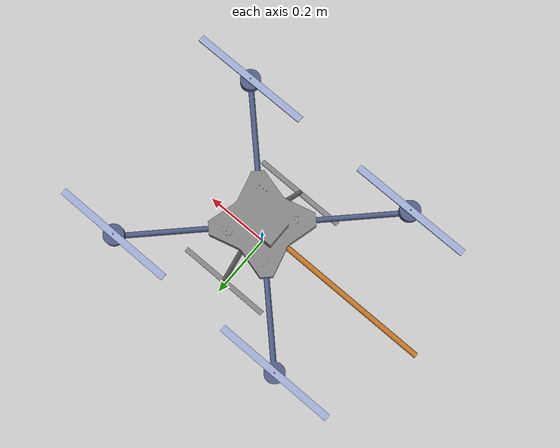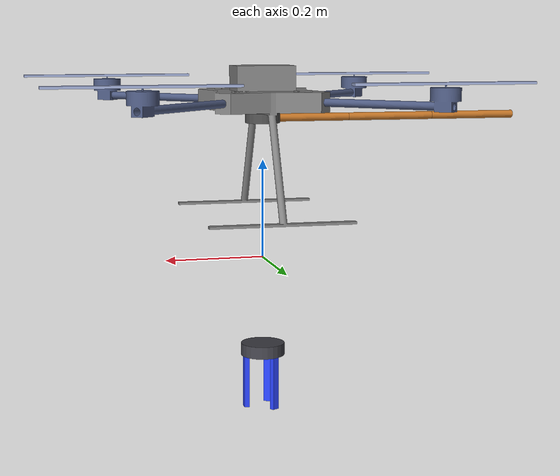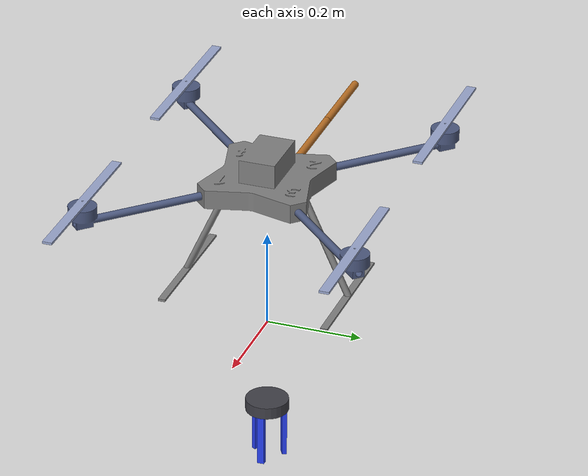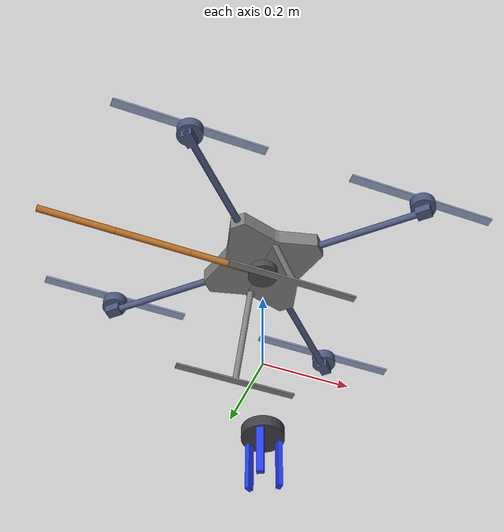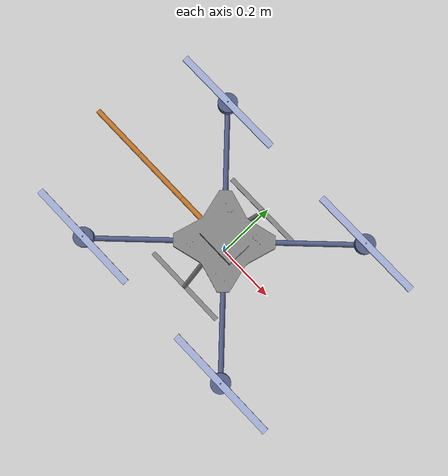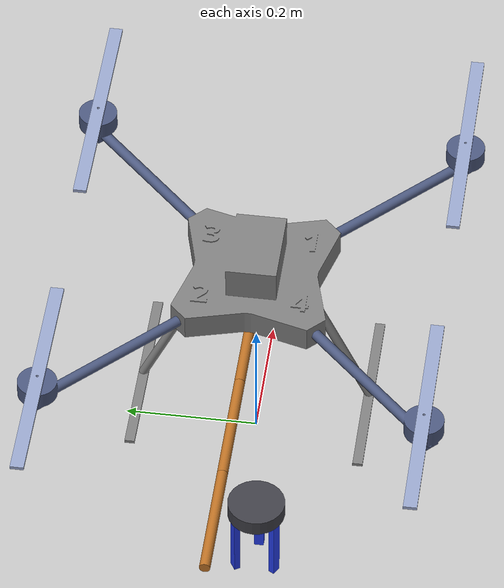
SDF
<?xml version="1.0" encoding="UTF-8"?>
<sdf version='1.9'>
  <model name='hillstar_rigid_arm_gripper'>
    <include merge='true'>
      <uri>model://hillstar</uri>
    </include>
    <include merge='true'>
      <uri>model://rigid_arm_3link</uri>
    </include>

    <joint name="rigid_arm_joint_1" type="revolute">
      <parent>base_link</parent>
      <child>rigid_arm_3link/link_1</child>
      <axis>
        <xyz>0 -1 0</xyz>
        <limit>
          <lower>-2.0944</lower>
          <upper>2.0944</upper>
          <effort>0.6</effort>
          <velocity>3.0</velocity>
        </limit>
        <dynamics>
          <damping>0.05</damping>
          <friction>0.01</friction>
        </dynamics>
      </axis>
    </joint>

    <include merge='true'>
      <uri>model://gripper_3finger</uri>
      <pose relative_to='rigid_arm_3link/link_3'>0 0 -0.18 0 0 0</pose>
    </include>

    <!-- Glue joint: welds the palm base onto the arm's tip link, same as
         each finger below. Fixed - it's a static connector between the arm
         and the finger set, not an actuated part. -->
    <joint name="palm_joint" type="fixed">
      <parent>rigid_arm_3link/link_3</parent>
      <child>gripper_3finger/palm</child>
    </joint>

    <!-- Finger glue joints: mount each finger onto the arm's tip link
         instead of base_link (the only difference from hillstar_gripper's
         equivalent joints). Axis/limit/dynamics unchanged. -->
    <joint name="finger_0_joint" type="revolute">
      <parent>rigid_arm_3link/link_3</parent>
      <child>gripper_3finger/finger_0</child>
      <axis>
        <xyz>0 -1 0</xyz>
        <limit>
          <lower>-0.6</lower>
          <upper>0.6</upper>
          <effort>0.5</effort>
          <velocity>3.0</velocity>
        </limit>
        <dynamics>
          <damping>0.02</damping>
          <friction>0.005</friction>
        </dynamics>
      </axis>
    </joint>

    <joint name="finger_1_joint" type="revolute">
      <parent>rigid_arm_3link/link_3</parent>
      <child>gripper_3finger/finger_1</child>
      <axis>
        <xyz>0 -1 0</xyz>
        <limit>
          <lower>-0.6</lower>
          <upper>0.6</upper>
          <effort>0.5</effort>
          <velocity>3.0</velocity>
        </limit>
        <dynamics>
          <damping>0.02</damping>
          <friction>0.005</friction>
        </dynamics>
      </axis>
    </joint>

    <joint name="finger_2_joint" type="revolute">
      <parent>rigid_arm_3link/link_3</parent>
      <child>gripper_3finger/finger_2</child>
      <axis>
        <xyz>0 -1 0</xyz>
        <limit>
          <lower>-0.6</lower>
          <upper>0.6</upper>
          <effort>0.5</effort>
          <velocity>3.0</velocity>
        </limit>
        <dynamics>
          <damping>0.02</damping>
          <friction>0.005</friction>
        </dynamics>
      </axis>
    </joint>

    <plugin filename="GripperController" name="gripper_controller::GripperController">
      <gripper_base_link>rigid_arm_3link/link_3</gripper_base_link>
      <finger_joint>finger_0_joint</finger_joint>
      <finger_joint>finger_1_joint</finger_joint>
      <finger_joint>finger_2_joint</finger_joint>
      <finger_collision>gripper_3finger/finger_0_collision</finger_collision>
      <finger_collision>gripper_3finger/finger_1_collision</finger_collision>
      <finger_collision>gripper_3finger/finger_2_collision</finger_collision>
      <finger_contact_topic>/gripper_3finger/finger_0_contact</finger_contact_topic>
      <finger_contact_topic>/gripper_3finger/finger_1_contact</finger_contact_topic>
      <finger_contact_topic>/gripper_3finger/finger_2_contact</finger_contact_topic>
      <!-- open = fingers spread outward, ready to grab; closed = fingers
           curled toward center, object grasped; 30 deg from vertical. -->
      <open_position>0.5235</open_position>
      <closed_position>-0.5235</closed_position>
      <finger_p_gain>1.5</finger_p_gain>
      <finger_d_gain>0.02</finger_d_gain>
      <finger_effort_limit>0.5</finger_effort_limit>
      <command_topic>/hillstar/gripper_cmd</command_topic>
      <state_topic>/hillstar/gripper_state</state_topic>
      <grasp_radius>0.08</grasp_radius>
      <grasp_center_offset>0 0 -0.252</grasp_center_offset>
      <vehicle_model_name>hillstar_rigid_arm_gripper</vehicle_model_name>
    </plugin>
  </model>
</sdf>

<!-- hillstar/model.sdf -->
<sdf version='1.9'>
  <model name='hillstar'>
    <pose>0 0 0.30 0 0 0</pose>
    <self_collide>false</self_collide>
    <static>false</static>
    <link name='base_link'>
      <pose>0 0 0 0 0 0</pose>
      <gravity>true</gravity>
      <velocity_decay/>
      <inertial>
        <mass>3.26</mass>
        <inertia>
          <ixx>0.0205</ixx>
          <iyy>0.0177</iyy>
          <izz>0.0225</izz>
          <ixy>0</ixy>
          <ixz>0</ixz>
          <iyz>0</iyz>
        </inertia>
      </inertial>
      <collision name="collision_base_link">
        <pose>0 0 0.0425 0 0 0</pose>
        <geometry>
          <box>
            <size>0.20 0.20 0.095</size>
          </box>
        </geometry>
      </collision>
      <collision name="collision_leg_left">
        <pose>0 -0.1715 -0.2075 0 0 0</pose>
        <geometry>
          <box>
            <size>0.29 0.015 0.005</size>
          </box>
        </geometry>
      </collision>
      <collision name="collision_leg_right">
        <pose>0 0.1715 -0.2075 0 0 0</pose>
        <geometry>
          <box>
            <size>0.29 0.015 0.005</size>
          </box>
        </geometry>
      </collision>
      <visual name='visual_base_link'>
        <pose>0 0 0 0 0 0</pose>
        <geometry>
          <mesh>
          <uri>model://hillstar/stl_files/body_frame_subassembly.stl</uri>
          </mesh>
        </geometry>
        <material>
          <ambient>0.2 0.2 0.2 1</ambient>
          <diffuse>0.5 0.5 0.5 1</diffuse>
          <specular>0.25 0.25 0.25 1</specular>
        </material>
      </visual>
      <collision name="collision_gripper_mount">
        <pose>0 0 -0.015 0 0 0</pose>
        <geometry>
          <cylinder><radius>0.035</radius><length>0.02</length></cylinder>
        </geometry>
      </collision>
      <visual name="visual_gripper_mount">
        <pose>0 0 -0.015 0 0 0</pose>
        <geometry>
          <cylinder><radius>0.035</radius><length>0.02</length></cylinder>
        </geometry>
        <material>
          <ambient>0.2 0.2 0.2 1</ambient>
          <diffuse>0.3 0.3 0.3 1</diffuse>
        </material>
      </visual>

      <!-- the sensors attached on the main body should go here -->
      <sensor name="air_pressure_sensor" type="air_pressure">
        <always_on>1</always_on>
        <update_rate>50</update_rate>
        <air_pressure>
          <pressure>
            <noise type="gaussian">
              <mean>0</mean>
              <stddev>0.01</stddev>
            </noise>
          </pressure>
        </air_pressure>
      </sensor>
      <sensor name="imu_sensor" type="imu">
        <always_on>1</always_on>
        <update_rate>250</update_rate>
        <imu>
          <angular_velocity>
            <x>
              <noise type="gaussian">
                <mean>0</mean>
                <stddev>0.00018665</stddev>
                <dynamic_bias_stddev>3.8785e-05</dynamic_bias_stddev>
                <dynamic_bias_correlation_time>1000</dynamic_bias_correlation_time>
              </noise>
            </x>
            <y>
              <noise type="gaussian">
                <mean>0</mean>
                <stddev>0.00018665</stddev>
                <dynamic_bias_stddev>3.8785e-05</dynamic_bias_stddev>
                <dynamic_bias_correlation_time>1000</dynamic_bias_correlation_time>
              </noise>
            </y>
            <z>
              <noise type="gaussian">
                <mean>0</mean>
                <stddev>0.00018665</stddev>
                <dynamic_bias_stddev>3.8785e-05</dynamic_bias_stddev>
                <dynamic_bias_correlation_time>1000</dynamic_bias_correlation_time>
              </noise>
            </z>
          </angular_velocity>
          <linear_acceleration>
            <x>
              <noise type="gaussian">
                <mean>0</mean>
                <stddev>0.00186</stddev>
                <dynamic_bias_stddev>0.006</dynamic_bias_stddev>
                <dynamic_bias_correlation_time>300</dynamic_bias_correlation_time>
              </noise>
            </x>
            <y>
              <noise type="gaussian">
                <mean>0</mean>
                <stddev>0.00186</stddev>
                <dynamic_bias_stddev>0.006</dynamic_bias_stddev>
                <dynamic_bias_correlation_time>300</dynamic_bias_correlation_time>
              </noise>
            </y>
            <z>
              <noise type="gaussian">
                <mean>0</mean>
                <stddev>0.00186</stddev>
                <dynamic_bias_stddev>0.006</dynamic_bias_stddev>
                <dynamic_bias_correlation_time>300</dynamic_bias_correlation_time>
              </noise>
            </z>
          </linear_acceleration>
        </imu>
      </sensor>
      <sensor name="navsat_sensor" type="navsat">
        <always_on>1</always_on>
        <update_rate>30</update_rate>
      </sensor>

      <!-- Forward/down-looking RGB camera for future AprilTag-based -->
      <!-- perception. Rigidly mounted under the front of the body (no -->
      <!-- separate link/joint needed - it never moves relative to base_link), -->
      <!-- pitched 30 deg down from horizontal so it naturally frames the -->
      <!-- sloped wall ahead during a level approach. horizontal_fov=110deg -->
      <!-- with a 4:3 image -->
      <sensor name="camera_sensor" type="camera">
        <pose>0.1 0 -0.03 0 0.5236 0</pose>
        <always_on>1</always_on>
        <update_rate>20</update_rate>
        <topic>hillstar/camera</topic>
        <camera>
          <horizontal_fov>1.91986</horizontal_fov>
          <image>
            <width>1280</width>
            <height>960</height>
            <format>R8G8B8</format>
          </image>
          <clip>
            <near>0.05</near>
            <far>50</far>
          </clip>
        </camera>
      </sensor>
    </link>

    <!-- ARM - 0 -->
    <!-- The link for individual arm assembly -->
    <link name = "arm_0">
      <gravity>true</gravity>
      <self_collide>false</self_collide>
      <velocity_decay/>
      <pose>0.102 -0.102 0.02 0 0 0.785</pose>
      <inertial>
        <mass>0.2</mass>
          <inertia>
            <ixx>9.1e-4</ixx>
            <iyy>7.1e-5</iyy>
            <izz>9.1e-4</izz>
          </inertia>
      </inertial>
      <visual name='visual_arm_assembly_0'>
        <pose>0 0 0 0 0 0</pose>
        <geometry>
          <mesh>
            <uri>model://hillstar/stl_files/arm.stl</uri>
          </mesh>
        </geometry>
        <material>
          <ambient>0.25 0.3 0.4 1.0</ambient>
          <diffuse>0.3 0.35 0.5 1.0</diffuse>
          <specular>0.3 0.3 0.3 1.0</specular>
          <emissive>0.0 0.0 0.0 0.0</emissive>
        </material>
      </visual>
      <collision name='collision_arm_assembly_0'>
        <pose>0 -0.135 0 0 0 0</pose>
        <!-- origin is at the mounting point, shifting it to Center of Geometry -->
        <geometry>
          <box>
            <size>0.06 0.27 0.045</size>
          </box>
        </geometry>
      </collision>
    </link>

    <!-- The joint for tilting arm_0 -->
    <joint name="tilt_arm_0" type="revolute">
      <parent>base_link</parent>
      <child>arm_0</child>
      <axis>
        <xyz>0 -1 0</xyz>
        <limit>
          <lower>-1.5707</lower>
          <upper>1.5707</upper>
          <effort>3.5</effort>
          <velocity>6.0</velocity>
        </limit>
        <dynamics>
          <damping>0.2</damping>
          <friction>0.025</friction>
        </dynamics>
      </axis>
    </joint>

    <!-- Joint Control for the tilting motor-0 -->
    <plugin filename="gz-sim-joint-position-controller-system" name="gz::sim::systems::JointPositionController">
      <joint_name>tilt_arm_0</joint_name>
      <initial_position>0</initial_position>
      <sub_topic>servo_0</sub_topic>
      <p_gain>8.0</p_gain>
      <i_gain>0.1</i_gain>
      <d_gain>0.3</d_gain>
    </plugin>

    <!-- Link for the propeller-0 -->
    <link name = "prop_0">
      <gravity>true</gravity>
      <self_collide>false</self_collide>
      <velocity_decay/>
      <pose>0.28 -0.28 0.06 0 0 0</pose>
      <inertial>
        <mass>0.025</mass>
          <inertia>
            <ixx>8.8e-07</ixx>
            <iyy>2.6e-04</iyy>
            <izz>2.6e-04</izz>
          </inertia>
      </inertial>
      <visual name='visual_prop_0'>
        <geometry>
          <mesh>
            <uri>model://hillstar/stl_files/prop.stl</uri>
          </mesh>
        </geometry>
        <material>
          <ambient>0.3 0.32 0.36 1</ambient>
          <diffuse>0.6 0.65 0.8 1</diffuse>
          <specular>0.4 0.45 0.55 1</specular>
        </material>
      </visual>
      <collision name='collision_prop_0'>
        <geometry>
          <mesh>
            <uri>model://hillstar/stl_files/prop.stl</uri>
          </mesh>
        </geometry>
      </collision>
    </link>

    <!-- Joint for the propeller-0 -->
    <joint name="rotor_0_joint" type="revolute">
      <parent>arm_0</parent>
      <child>prop_0</child>
      <axis>
        <xyz>0 0 1</xyz>
        <dynamics>
          <spring_reference>0</spring_reference>
          <spring_stiffness>0</spring_stiffness>
        </dynamics>
      </axis>
    </joint>

    <!-- Motor object for the propeller-0 -->
    <plugin filename="gz-sim-multicopter-motor-model-system" name="gz::sim::systems::MulticopterMotorModel">
      <jointName>rotor_0_joint</jointName>
      <linkName>prop_0</linkName>
      <turningDirection>ccw</turningDirection>
      <timeConstantUp>0.015</timeConstantUp>
      <timeConstantDown>0.03</timeConstantDown>
      <maxRotVelocity>855</maxRotVelocity>
      <motorConstant>3.5e-5</motorConstant>
      <momentConstant>0.017</momentConstant>
      <commandSubTopic>command/motor_speed</commandSubTopic>
      <motorNumber>0</motorNumber>
      <rotorDragCoefficient>8.06428e-05</rotorDragCoefficient>
      <rollingMomentCoefficient>1e-06</rollingMomentCoefficient>
      <rotorVelocitySlowdownSim>10</rotorVelocitySlowdownSim>
      <motorType>velocity</motorType>
    </plugin>

    <!-- ARM - 1 -->
    <!-- The link for individual arm assembly -->
    <link name = "arm_1">
      <gravity>true</gravity>
      <self_collide>false</self_collide>
      <velocity_decay/>
      <pose>-0.102 0.102 0.02 0 0 -2.356</pose>
      <inertial>
        <mass>0.2</mass>
          <inertia>
            <ixx>9.1e-4</ixx>
            <iyy>7.1e-5</iyy>
            <izz>9.1e-4</izz>
          </inertia>
      </inertial>
      <visual name='visual_arm_assembly_1'>
        <pose>0 0 0 0 0 0</pose>
        <geometry>
          <mesh>
            <uri>model://hillstar/stl_files/arm.stl</uri>
          </mesh>
        </geometry>
        <material>
          <ambient>0.25 0.3 0.4 1.0</ambient>
          <diffuse>0.3 0.35 0.5 1.0</diffuse>
          <specular>0.3 0.3 0.3 1.0</specular>
          <emissive>0.0 0.0 0.0 0.0</emissive>
        </material>
      </visual>
      <collision name='collision_arm_assembly_1'>
        <pose>0 -0.135 0 0 0 0</pose>
        <!-- origin is at the mounting point, shifting it to Center of Geometry -->
        <geometry>
          <box>
            <size>0.06 0.27 0.045</size>
          </box>
        </geometry>
      </collision>
    </link>

    <!-- The joint for tilting arm_1 -->
    <joint name="tilt_arm_1" type="revolute">
      <parent>base_link</parent>
      <child>arm_1</child>
      <axis>
        <xyz>0 -1 0</xyz>
        <limit>
          <lower>-1.5707</lower>
          <upper>1.5707</upper>
          <effort>3.5</effort>
          <velocity>6.0</velocity>
        </limit>
        <dynamics>
          <damping>0.2</damping>
          <friction>0.025</friction>
        </dynamics>
      </axis>
    </joint>

    <!-- Joint Control for the tilting motor-1 -->
    <plugin filename="gz-sim-joint-position-controller-system" name="gz::sim::systems::JointPositionController">
      <joint_name>tilt_arm_1</joint_name>
      <initial_position>0</initial_position>
      <sub_topic>servo_1</sub_topic>
      <p_gain>8.0</p_gain>
      <i_gain>0.1</i_gain>
      <d_gain>0.3</d_gain>
    </plugin>

    <!-- Link for the propeller-1 -->
    <link name = "prop_1">
      <gravity>true</gravity>
      <self_collide>false</self_collide>
      <velocity_decay/>
      <pose>-0.28 0.28 0.06 0 0 0</pose>
      <inertial>
        <mass>0.025</mass>
          <inertia>
            <ixx>8.8e-07</ixx>
            <iyy>2.6e-04</iyy>
            <izz>2.6e-04</izz>
          </inertia>
      </inertial>
      <visual name='visual_prop_1'>
        <geometry>
          <mesh>
            <uri>model://hillstar/stl_files/prop.stl</uri>
          </mesh>
        </geometry>
        <material>
          <ambient>0.3 0.32 0.36 1</ambient>
          <diffuse>0.6 0.65 0.8 1</diffuse>
          <specular>0.4 0.45 0.55 1</specular>
        </material>
      </visual>
      <collision name='collision_prop_1'>
        <geometry>
          <mesh>
            <uri>model://hillstar/stl_files/prop.stl</uri>
          </mesh>
        </geometry>
      </collision>
    </link>

    <!-- Joint for the propeller-1 -->
    <joint name="rotor_1_joint" type="revolute">
      <parent>arm_1</parent>
      <child>prop_1</child>
      <axis>
        <xyz>0 0 1</xyz>
        <dynamics>
          <spring_reference>0</spring_reference>
          <spring_stiffness>0</spring_stiffness>
        </dynamics>
      </axis>
    </joint>

    <!-- Motor object for the propeller-1 -->
    <plugin filename="gz-sim-multicopter-motor-model-system" name="gz::sim::systems::MulticopterMotorModel">
      <jointName>rotor_1_joint</jointName>
      <linkName>prop_1</linkName>
      <turningDirection>ccw</turningDirection>
      <timeConstantUp>0.015</timeConstantUp>
      <timeConstantDown>0.03</timeConstantDown>
      <maxRotVelocity>855</maxRotVelocity>
      <motorConstant>3.5e-5</motorConstant>
      <momentConstant>0.017</momentConstant>
      <commandSubTopic>command/motor_speed</commandSubTopic>
      <motorNumber>1</motorNumber>
      <rotorDragCoefficient>8.06428e-05</rotorDragCoefficient>
      <rollingMomentCoefficient>1e-06</rollingMomentCoefficient>
      <rotorVelocitySlowdownSim>10</rotorVelocitySlowdownSim>
      <motorType>velocity</motorType>
    </plugin>

    <!-- ARM - 2 -->
    <!-- The link for individual arm assembly -->
    <link name = "arm_2">
      <gravity>true</gravity>
      <self_collide>false</self_collide>
      <velocity_decay/>
      <pose>0.102 0.102 0.02 0 0 2.356</pose>
      <inertial>
        <mass>0.2</mass>
          <inertia>
            <ixx>9.1e-4</ixx>
            <iyy>7.1e-5</iyy>
            <izz>9.1e-4</izz>
          </inertia>
      </inertial>
      <visual name='visual_arm_assembly_2'>
        <pose>0 0 0 0 0 0</pose>
        <geometry>
          <mesh>
            <uri>model://hillstar/stl_files/arm.stl</uri>
          </mesh>
        </geometry>
        <material>
          <ambient>0.25 0.3 0.4 1.0</ambient>
          <diffuse>0.3 0.35 0.5 1.0</diffuse>
          <specular>0.3 0.3 0.3 1.0</specular>
          <emissive>0.0 0.0 0.0 0.0</emissive>
        </material>
      </visual>
      <collision name='collision_arm_assembly_2'>
        <pose>0 -0.135 0 0 0 0</pose>
        <!-- origin is at the mounting point, shifting it to Center of Geometry -->
        <geometry>
          <box>
            <size>0.06 0.27 0.045</size>
          </box>
        </geometry>
      </collision>
    </link>

    <!-- The joint for tilting arm_2 -->
    <joint name="tilt_arm_2" type="revolute">
      <parent>base_link</parent>
      <child>arm_2</child>
      <axis>
        <xyz>0 -1 0</xyz>
        <limit>
          <lower>-1.5707</lower>
          <upper>1.5707</upper>
          <effort>3.5</effort>
          <velocity>6.0</velocity>
        </limit>
        <dynamics>
          <damping>0.2</damping>
          <friction>0.025</friction>
        </dynamics>
      </axis>
    </joint>

    <!-- Joint Control for the tilting motor-2 -->
    <plugin filename="gz-sim-joint-position-controller-system" name="gz::sim::systems::JointPositionController">
      <joint_name>tilt_arm_2</joint_name>
      <initial_position>0</initial_position>
      <sub_topic>servo_2</sub_topic>
      <p_gain>8.0</p_gain>
      <i_gain>0.1</i_gain>
      <d_gain>0.3</d_gain>
    </plugin>

    <!-- Link for the propeller-2 -->
    <link name = "prop_2">
      <gravity>true</gravity>
      <self_collide>false</self_collide>
      <velocity_decay/>
      <pose>0.28 0.28 0.06 0 0 0</pose>
      <inertial>
        <mass>0.025</mass>
          <inertia>
            <ixx>8.8e-07</ixx>
            <iyy>2.6e-04</iyy>
            <izz>2.6e-04</izz>
          </inertia>
      </inertial>
      <visual name='visual_prop_2'>
        <geometry>
          <mesh>
            <uri>model://hillstar/stl_files/prop.stl</uri>
          </mesh>
        </geometry>
        <material>
          <ambient>0.3 0.32 0.36 1</ambient>
          <diffuse>0.6 0.65 0.8 1</diffuse>
          <specular>0.4 0.45 0.55 1</specular>
        </material>
      </visual>
      <collision name='collision_prop_2'>
        <geometry>
          <mesh>
            <uri>model://hillstar/stl_files/prop.stl</uri>
          </mesh>
        </geometry>
      </collision>
    </link>

    <!-- Joint for the propeller-2 -->
    <joint name="rotor_2_joint" type="revolute">
      <parent>arm_2</parent>
      <child>prop_2</child>
      <axis>
        <xyz>0 0 1</xyz>
        <dynamics>
          <spring_reference>0</spring_reference>
          <spring_stiffness>0</spring_stiffness>
        </dynamics>
      </axis>
    </joint>

    <!-- Motor object for the propeller-2 -->
    <plugin filename="gz-sim-multicopter-motor-model-system" name="gz::sim::systems::MulticopterMotorModel">
      <jointName>rotor_2_joint</jointName>
      <linkName>prop_2</linkName>
      <turningDirection>cw</turningDirection>
      <timeConstantUp>0.015</timeConstantUp>
      <timeConstantDown>0.03</timeConstantDown>
      <maxRotVelocity>855</maxRotVelocity>
      <motorConstant>3.5e-5</motorConstant>
      <momentConstant>0.017</momentConstant>
      <commandSubTopic>command/motor_speed</commandSubTopic>
      <motorNumber>2</motorNumber>
      <rotorDragCoefficient>8.06428e-05</rotorDragCoefficient>
      <rollingMomentCoefficient>1e-06</rollingMomentCoefficient>
      <rotorVelocitySlowdownSim>10</rotorVelocitySlowdownSim>
      <motorType>velocity</motorType>
    </plugin>

        <!-- ARM - 3 -->
    <!-- The link for individual arm assembly -->
    <link name = "arm_3">
      <gravity>true</gravity>
      <self_collide>false</self_collide>
      <velocity_decay/>
      <pose>-0.102 -0.102 0.02 0 0 -0.785</pose>
      <inertial>
        <mass>0.2</mass>
          <inertia>
            <ixx>9.1e-4</ixx>
            <iyy>7.1e-5</iyy>
            <izz>9.1e-4</izz>
          </inertia>
      </inertial>
      <visual name='visual_arm_assembly_3'>
        <pose>0 0 0 0 0 0</pose>
        <geometry>
          <mesh>
            <uri>model://hillstar/stl_files/arm.stl</uri>
          </mesh>
        </geometry>
        <material>
          <ambient>0.25 0.3 0.4 1.0</ambient>
          <diffuse>0.3 0.35 0.5 1.0</diffuse>
          <specular>0.3 0.3 0.3 1.0</specular>
          <emissive>0.0 0.0 0.0 0.0</emissive>
        </material>
      </visual>
      <collision name='collision_arm_assembly_3'>
        <pose>0 -0.135 0 0 0 0</pose>
        <!-- origin is at the mounting point, shifting it to Center of Geometry -->
        <geometry>
          <box>
            <size>0.06 0.27 0.045</size>
          </box>
        </geometry>
      </collision>
    </link>

    <!-- The joint for tilting arm_3 -->
    <joint name="tilt_arm_3" type="revolute">
      <parent>base_link</parent>
      <child>arm_3</child>
      <axis>
        <xyz>0 -1 0</xyz>
        <limit>
          <lower>-1.5707</lower>
          <upper>1.5707</upper>
          <effort>3.5</effort>
          <velocity>6.0</velocity>
        </limit>
        <dynamics>
          <damping>0.2</damping>
          <friction>0.025</friction>
        </dynamics>
      </axis>
    </joint>

    <!-- Joint Control for the tilting motor-3 -->
    <plugin filename="gz-sim-joint-position-controller-system" name="gz::sim::systems::JointPositionController">
      <joint_name>tilt_arm_3</joint_name>
      <initial_position>0</initial_position>
      <sub_topic>servo_3</sub_topic>
      <p_gain>8.0</p_gain>
      <i_gain>0.1</i_gain>
      <d_gain>0.3</d_gain>
    </plugin>

    <!-- Link for the propeller-3 -->
    <link name = "prop_3">
      <gravity>true</gravity>
      <self_collide>false</self_collide>
      <velocity_decay/>
      <pose>-0.28 -0.28 0.06 0 0 0</pose>
      <inertial>
        <mass>0.025</mass>
          <inertia>
            <ixx>8.8e-07</ixx>
            <iyy>2.6e-04</iyy>
            <izz>2.6e-04</izz>
          </inertia>
      </inertial>
      <visual name='visual_prop_3'>
        <geometry>
          <mesh>
            <uri>model://hillstar/stl_files/prop.stl</uri>
          </mesh>
        </geometry>
        <material>
          <ambient>0.3 0.32 0.36 1</ambient>
          <diffuse>0.6 0.65 0.8 1</diffuse>
          <specular>0.4 0.45 0.55 1</specular>
        </material>
      </visual>
      <collision name='collision_prop_3'>
        <geometry>
          <mesh>
            <uri>model://hillstar/stl_files/prop.stl</uri>
          </mesh>
        </geometry>
      </collision>
    </link>

    <!-- Joint for the propeller-3 -->
    <joint name="rotor_3_joint" type="revolute">
      <parent>arm_3</parent>
      <child>prop_3</child>
      <axis>
        <xyz>0 0 1</xyz>
        <dynamics>
          <spring_reference>0</spring_reference>
          <spring_stiffness>0</spring_stiffness>
        </dynamics>
      </axis>
    </joint>

    <!-- Motor object for the propeller-3 -->
    <plugin filename="gz-sim-multicopter-motor-model-system" name="gz::sim::systems::MulticopterMotorModel">
      <jointName>rotor_3_joint</jointName>
      <linkName>prop_3</linkName>
      <turningDirection>cw</turningDirection>
      <timeConstantUp>0.015</timeConstantUp>
      <timeConstantDown>0.03</timeConstantDown>
      <maxRotVelocity>855</maxRotVelocity>
      <motorConstant>3.5e-5</motorConstant>
      <momentConstant>0.017</momentConstant>
      <commandSubTopic>command/motor_speed</commandSubTopic>
      <motorNumber>3</motorNumber>
      <rotorDragCoefficient>8.06428e-05</rotorDragCoefficient>
      <rollingMomentCoefficient>1e-06</rollingMomentCoefficient>
      <rotorVelocitySlowdownSim>10</rotorVelocitySlowdownSim>
      <motorType>velocity</motorType>
    </plugin>

    <plugin filename="gz-sim-joint-state-publisher-system" name="gz::sim::systems::JointStatePublisher">
      <topic>/hillstar/tilt_angles</topic>
      <joint_name>tilt_arm_0</joint_name>
      <joint_name>tilt_arm_1</joint_name>
      <joint_name>tilt_arm_2</joint_name>
      <joint_name>tilt_arm_3</joint_name>
    </plugin>

    <plugin filename="gz-sim-odometry-publisher-system" name="gz::sim::systems::OdometryPublisher">
      <dimensions>3</dimensions>
      <odom_frame>odom</odom_frame>
      <robot_base_frame>base_link</robot_base_frame>
    </plugin>

  </model>
</sdf>

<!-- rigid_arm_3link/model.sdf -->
<sdf version='1.9'>
  <model name='rigid_arm_3link'>
    <pose>0 0 0.30 0 0 0</pose>
    <self_collide>false</self_collide>
    <static>false</static>

    <!-- ===== Link 1 (shoulder-driven rod) ===== -->
    <link name="rigid_arm_3link/link_1">
      <pose>0 0 -0.015 0 1.5708 0</pose>
      <gravity>true</gravity>
      <self_collide>false</self_collide>
      <velocity_decay/>
      <inertial>
        <!-- rod, r=0.008 L=0.18 m=0.025kg, about its own CoM (offset -0.09 -->
        <!-- along local z, matching the collision/visual pose below); -->
        <!-- izz is about the rod's long axis (m*r^2/2, independent of L), -->
        <!-- ixx/iyy perpendicular to it (m*(3r^2+L^2)/12). Kept -->
        <!-- intentionally light (25g, same as a single prop elsewhere in -->
        <!-- this project) so swinging the arm doesn't meaningfully perturb -->
        <!-- the ~4.16kg vehicle. -->
        <pose>0 0 -0.09 0 0 0</pose>
        <mass>0.025</mass>
        <inertia>
          <ixx>6.79e-5</ixx>
          <iyy>6.79e-5</iyy>
          <izz>8.0e-7</izz>
        </inertia>
      </inertial>
      <collision name="rigid_arm_3link/link_1_collision">
        <pose>0 0 -0.09 0 0 0</pose>
        <geometry>
          <cylinder><radius>0.008</radius><length>0.18</length></cylinder>
        </geometry>
      </collision>
      <visual name="rigid_arm_3link/link_1_visual">
        <pose>0 0 -0.09 0 0 0</pose>
        <geometry>
          <cylinder><radius>0.008</radius><length>0.18</length></cylinder>
        </geometry>
        <material>
          <ambient>0.6 0.35 0.1 1</ambient>
          <diffuse>0.75 0.45 0.15 1</diffuse>
          <specular>0.3 0.3 0.3 1</specular>
        </material>
      </visual>
    </link>

    <!-- ===== Link 2 (elbow-driven rod) ===== -->
    <link name="rigid_arm_3link/link_2">
      <pose>-0.18 0 -0.015 0 1.5708 0</pose>
      <gravity>true</gravity>
      <self_collide>false</self_collide>
      <velocity_decay/>
      <inertial>
        <pose>0 0 -0.09 0 0 0</pose>
        <mass>0.025</mass>
        <inertia>
          <ixx>6.79e-5</ixx>
          <iyy>6.79e-5</iyy>
          <izz>8.0e-7</izz>
        </inertia>
      </inertial>
      <collision name="rigid_arm_3link/link_2_collision">
        <pose>0 0 -0.09 0 0 0</pose>
        <geometry>
          <cylinder><radius>0.008</radius><length>0.18</length></cylinder>
        </geometry>
      </collision>
      <visual name="rigid_arm_3link/link_2_visual">
        <pose>0 0 -0.09 0 0 0</pose>
        <geometry>
          <cylinder><radius>0.008</radius><length>0.18</length></cylinder>
        </geometry>
        <material>
          <ambient>0.6 0.35 0.1 1</ambient>
          <diffuse>0.75 0.45 0.15 1</diffuse>
          <specular>0.3 0.3 0.3 1</specular>
        </material>
      </visual>
    </link>

    <joint name="rigid_arm_joint_2" type="revolute">
      <parent>rigid_arm_3link/link_1</parent>
      <child>rigid_arm_3link/link_2</child>
      <axis>
        <xyz>0 -1 0</xyz>
        <limit>
          <lower>-2.0944</lower>
          <upper>2.0944</upper>
          <effort>0.6</effort>
          <velocity>3.0</velocity>
        </limit>
        <dynamics>
          <damping>0.05</damping>
          <friction>0.01</friction>
        </dynamics>
      </axis>
    </joint>

    <!-- ===== Link 3 (wrist-driven rod) ===== -->
    <link name="rigid_arm_3link/link_3">
      <pose>-0.36 0 -0.015 0 1.5708 0</pose>
      <gravity>true</gravity>
      <self_collide>false</self_collide>
      <velocity_decay/>
      <inertial>
        <pose>0 0 -0.09 0 0 0</pose>
        <mass>0.025</mass>
        <inertia>
          <ixx>6.79e-5</ixx>
          <iyy>6.79e-5</iyy>
          <izz>8.0e-7</izz>
        </inertia>
      </inertial>
      <collision name="rigid_arm_3link/link_3_collision">
        <pose>0 0 -0.09 0 0 0</pose>
        <geometry>
          <cylinder><radius>0.008</radius><length>0.18</length></cylinder>
        </geometry>
      </collision>
      <visual name="rigid_arm_3link/link_3_visual">
        <pose>0 0 -0.09 0 0 0</pose>
        <geometry>
          <cylinder><radius>0.008</radius><length>0.18</length></cylinder>
        </geometry>
        <material>
          <ambient>0.6 0.35 0.1 1</ambient>
          <diffuse>0.75 0.45 0.15 1</diffuse>
          <specular>0.3 0.3 0.3 1</specular>
        </material>
      </visual>
    </link>

    <joint name="rigid_arm_joint_3" type="revolute">
      <parent>rigid_arm_3link/link_2</parent>
      <child>rigid_arm_3link/link_3</child>
      <axis>
        <xyz>0 -1 0</xyz>
        <limit>
          <lower>-2.0944</lower>
          <upper>2.0944</upper>
          <effort>0.6</effort>
          <velocity>3.0</velocity>
        </limit>
        <dynamics>
          <damping>0.05</damping>
          <friction>0.01</friction>
        </dynamics>
      </axis>
    </joint>

    <plugin filename="gz-sim-joint-trajectory-controller-system" name="gz::sim::systems::JointTrajectoryController">
      <joint_name>rigid_arm_joint_1</joint_name>
      <initial_position>0</initial_position>
      <position_p_gain>4.0</position_p_gain>
      <position_i_gain>0.05</position_i_gain>
      <position_d_gain>0.15</position_d_gain>
      <position_i_min>-0.3</position_i_min>
      <position_i_max>0.3</position_i_max>
      <position_cmd_min>-0.6</position_cmd_min>
      <position_cmd_max>0.6</position_cmd_max>
      <velocity_p_gain>0.3</velocity_p_gain>
      <velocity_i_gain>1.0</velocity_i_gain>
      <velocity_cmd_min>-0.6</velocity_cmd_min>
      <velocity_cmd_max>0.6</velocity_cmd_max>

      <joint_name>rigid_arm_joint_2</joint_name>
      <initial_position>0</initial_position>
      <position_p_gain>4.0</position_p_gain>
      <position_i_gain>0.05</position_i_gain>
      <position_d_gain>0.15</position_d_gain>
      <position_i_min>-0.3</position_i_min>
      <position_i_max>0.3</position_i_max>
      <position_cmd_min>-0.6</position_cmd_min>
      <position_cmd_max>0.6</position_cmd_max>
      <velocity_p_gain>0.3</velocity_p_gain>
      <velocity_i_gain>1.0</velocity_i_gain>
      <velocity_cmd_min>-0.6</velocity_cmd_min>
      <velocity_cmd_max>0.6</velocity_cmd_max>

      <joint_name>rigid_arm_joint_3</joint_name>
      <initial_position>0</initial_position>
      <position_p_gain>4.0</position_p_gain>
      <position_i_gain>0.05</position_i_gain>
      <position_d_gain>0.15</position_d_gain>
      <position_i_min>-0.3</position_i_min>
      <position_i_max>0.3</position_i_max>
      <position_cmd_min>-0.6</position_cmd_min>
      <position_cmd_max>0.6</position_cmd_max>
      <velocity_p_gain>0.3</velocity_p_gain>
      <velocity_i_gain>1.0</velocity_i_gain>
      <velocity_cmd_min>-0.6</velocity_cmd_min>
      <velocity_cmd_max>0.6</velocity_cmd_max>
    </plugin>

    <plugin filename="gz-sim-joint-state-publisher-system" name="gz::sim::systems::JointStatePublisher">
      <topic>/rigid_arm_3link/joint_states</topic>
      <joint_name>rigid_arm_joint_1</joint_name>
      <joint_name>rigid_arm_joint_2</joint_name>
      <joint_name>rigid_arm_joint_3</joint_name>
    </plugin>

  </model>
</sdf>

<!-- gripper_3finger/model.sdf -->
<sdf version='1.9'>
  <model name='gripper_3finger'>
    <pose>0 0 0.30 0 0 0</pose>
    <self_collide>false</self_collide>
    <static>false</static>

    <link name="gripper_3finger/palm">
      <pose>0 0 -0.0125 0 0 0</pose>
      <gravity>true</gravity>
      <self_collide>false</self_collide>
      <velocity_decay/>
      <inertial>
        <mass>0.015</mass>
        <inertia>
          <ixx>8.375e-6</ixx>
          <iyy>8.375e-6</iyy>
          <izz>1.519e-5</izz>
        </inertia>
      </inertial>
      <collision name="gripper_3finger/palm_collision">
        <geometry>
          <cylinder><radius>0.045</radius><length>0.025</length></cylinder>
        </geometry>
      </collision>
      <visual name="gripper_3finger/palm_visual">
        <geometry>
          <cylinder><radius>0.045</radius><length>0.025</length></cylinder>
        </geometry>
        <material>
          <ambient>0.15 0.15 0.17 1</ambient>
          <diffuse>0.25 0.25 0.28 1</diffuse>
          <specular>0.3 0.3 0.3 1</specular>
        </material>
      </visual>
    </link>

    <!-- Finger 0 - mount angle 0 deg -->
    <link name="gripper_3finger/finger_0">
      <pose>0.035 0 -0.025 0 0 0</pose>
      <gravity>true</gravity>
      <velocity_decay/>
      <inertial>
        <mass>0.01</mass>
        <inertia>
          <ixx>2.2e-6</ixx>
          <iyy>2.2e-6</iyy>
          <izz>2.5e-7</izz>
        </inertia>
      </inertial>
      <collision name="gripper_3finger/finger_0_collision">
        <pose>0 0 -0.055 0 0 0</pose>
        <geometry>
          <box><size>0.01 0.015 0.11</size></box>
        </geometry>
      </collision>
      <visual name="gripper_3finger/finger_0_visual">
        <pose>0 0 -0.055 0 0 0</pose>
        <geometry>
          <box><size>0.01 0.015 0.11</size></box>
        </geometry>
        <material>
          <ambient>0.1 0.2 0.9 1</ambient>
          <diffuse>0.15 0.25 0.95 1</diffuse>
        </material>
      </visual>
      <sensor name="gripper_3finger/finger_0_contact_sensor" type="contact">
        <always_on>1</always_on>
        <update_rate>100</update_rate>
        <contact>
          <collision>gripper_3finger/finger_0_collision</collision>
          <topic>/gripper_3finger/finger_0_contact</topic>
        </contact>
      </sensor>
    </link>

    <!-- Finger 1 - mount angle 120 deg -->
    <link name="gripper_3finger/finger_1">
      <pose>-0.0175 0.03031 -0.025 0 0 2.0944</pose>
      <gravity>true</gravity>
      <velocity_decay/>
      <inertial>
        <mass>0.01</mass>
        <inertia>
          <ixx>2.2e-6</ixx>
          <iyy>2.2e-6</iyy>
          <izz>2.5e-7</izz>
        </inertia>
      </inertial>
      <collision name="gripper_3finger/finger_1_collision">
        <pose>0 0 -0.055 0 0 0</pose>
        <geometry>
          <box><size>0.01 0.015 0.11</size></box>
        </geometry>
      </collision>
      <visual name="gripper_3finger/finger_1_visual">
        <pose>0 0 -0.055 0 0 0</pose>
        <geometry>
          <box><size>0.01 0.015 0.11</size></box>
        </geometry>
        <material>
          <ambient>0.1 0.2 0.9 1</ambient>
          <diffuse>0.15 0.25 0.95 1</diffuse>
        </material>
      </visual>
      <sensor name="gripper_3finger/finger_1_contact_sensor" type="contact">
        <always_on>1</always_on>
        <update_rate>100</update_rate>
        <contact>
          <collision>gripper_3finger/finger_1_collision</collision>
          <topic>/gripper_3finger/finger_1_contact</topic>
        </contact>
      </sensor>
    </link>

    <!-- Finger 2 - mount angle 240 deg -->
    <link name="gripper_3finger/finger_2">
      <pose>-0.0175 -0.03031 -0.025 0 0 4.1888</pose>
      <gravity>true</gravity>
      <velocity_decay/>
      <inertial>
        <mass>0.01</mass>
        <inertia>
          <ixx>2.2e-6</ixx>
          <iyy>2.2e-6</iyy>
          <izz>2.5e-7</izz>
        </inertia>
      </inertial>
      <collision name="gripper_3finger/finger_2_collision">
        <pose>0 0 -0.055 0 0 0</pose>
        <geometry>
          <box><size>0.01 0.015 0.11</size></box>
        </geometry>
      </collision>
      <visual name="gripper_3finger/finger_2_visual">
        <pose>0 0 -0.055 0 0 0</pose>
        <geometry>
          <box><size>0.01 0.015 0.11</size></box>
        </geometry>
        <material>
          <ambient>0.1 0.2 0.9 1</ambient>
          <diffuse>0.15 0.25 0.95 1</diffuse>
        </material>
      </visual>
      <sensor name="gripper_3finger/finger_2_contact_sensor" type="contact">
        <always_on>1</always_on>
        <update_rate>100</update_rate>
        <contact>
          <collision>gripper_3finger/finger_2_collision</collision>
          <topic>/gripper_3finger/finger_2_contact</topic>
        </contact>
      </sensor>
    </link>

  </model>
</sdf>
